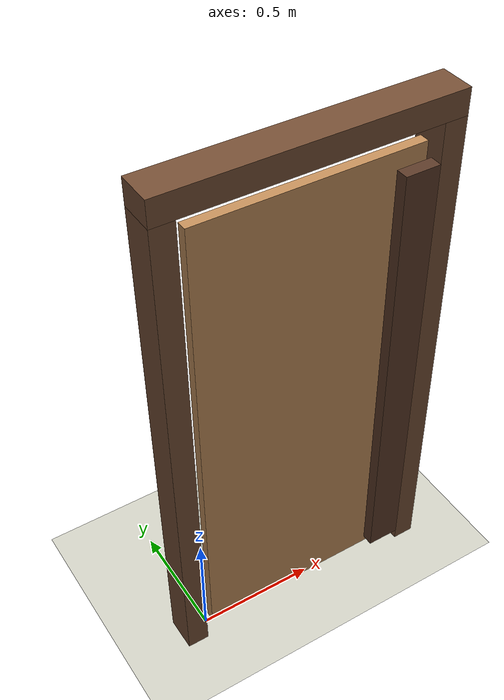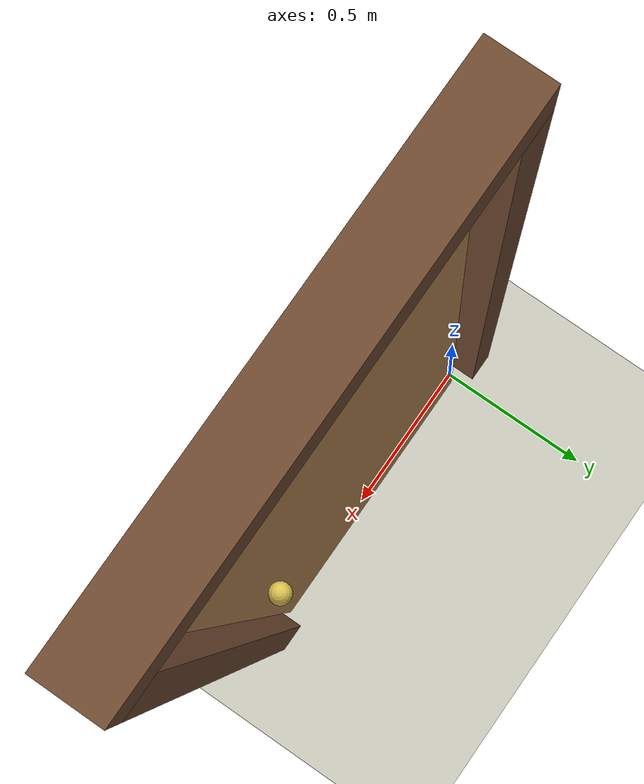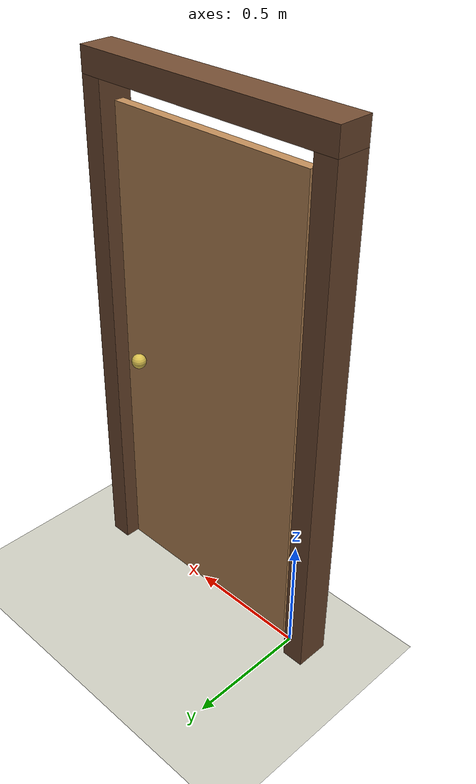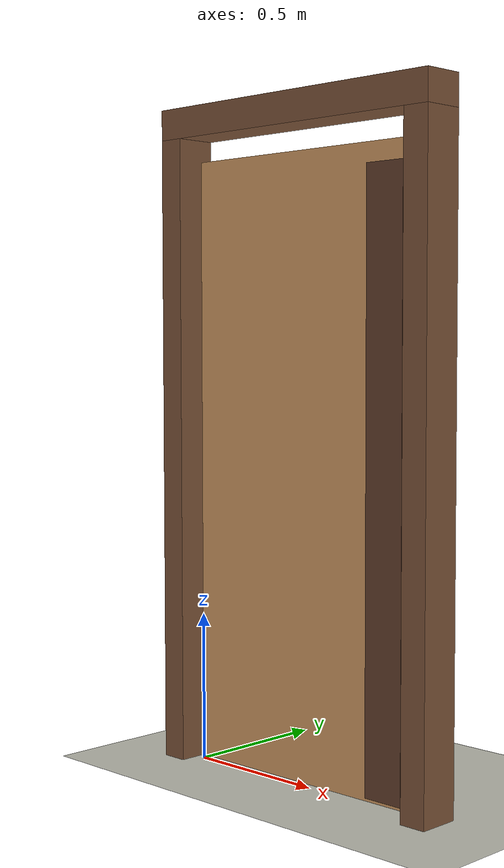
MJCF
<mujoco model="self_closing_door">
  <compiler angle="radian"/>
  <option timestep="0.002" gravity="0 0 -9.81"/>

  <visual>
    <headlight ambient="0.4 0.4 0.4" diffuse="0.6 0.6 0.6"/>
  </visual>

  <worldbody>
    <light name="sun" pos="0.5 -2 4" dir="0 0.4 -1" directional="true"/>
    <geom name="floor" type="plane" size="3 3 0.1" rgba="0.8 0.8 0.75 1"/>

    <!-- door frame (static) -->
    <geom name="hinge_jamb" type="box" pos="-0.075 0 1.05" size="0.045 0.07 1.05" rgba="0.45 0.3 0.2 1"/>
    <geom name="latch_jamb" type="box" pos="0.985 0 1.05" size="0.045 0.07 1.05" rgba="0.45 0.3 0.2 1"/>
    <geom name="lintel" type="box" pos="0.455 0 2.15" size="0.575 0.07 0.05" rgba="0.45 0.3 0.2 1"/>
    <geom name="door_stop" type="box" pos="0.87 -0.046 1.0" size="0.07 0.025 0.95" rgba="0.35 0.22 0.15 1"/>

    <!-- the door: shut at hinge = 0, opens toward +y for positive angles -->
    <body name="door" pos="0 0 0">
      <joint name="hinge" type="hinge" axis="0 0 1" pos="0 0 0" range="0 1.65" limited="true" stiffness="20" springref="-0.2" damping="8" solreflimit="0.01 1"/>
      <geom name="door_panel" type="box" pos="0.47 0 1.02" size="0.45 0.02 1.0" density="500" rgba="0.75 0.55 0.35 1"/>
      <geom name="door_knob" type="sphere" pos="0.82 0.05 1.0" size="0.03" density="500" contype="0" conaffinity="0" rgba="0.85 0.75 0.3 1"/>
    </body>
  </worldbody>

  <keyframe>
    <key name="start" qpos="1.4" qvel="0"/>
  </keyframe>
</mujoco>
